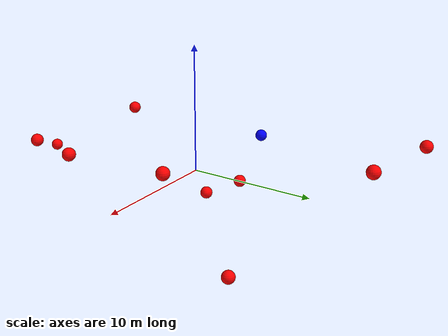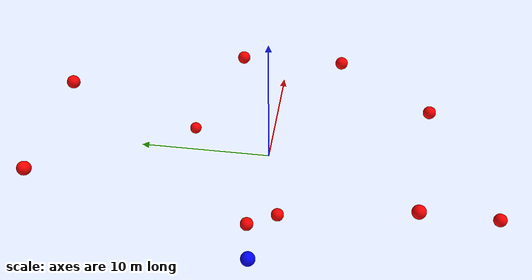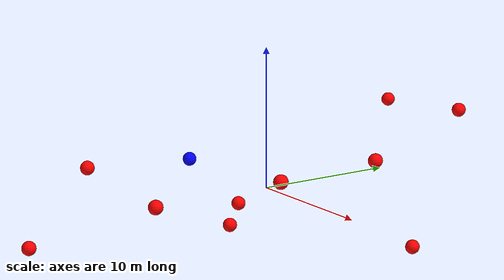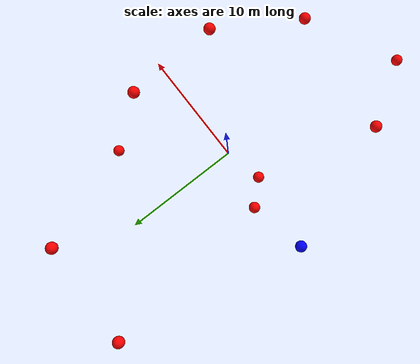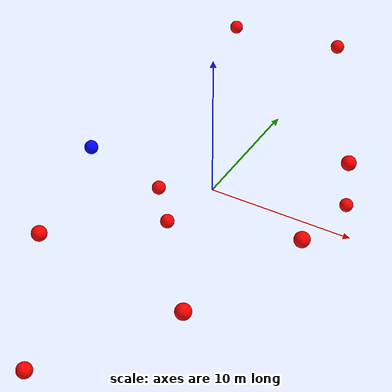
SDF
<?xml version="1.0" ?>
<sdf version="1.8">
    <world name="3d_world">
        <physics name="1ms" type="ode">
            <max_step_size>0.001</max_step_size>
            <real_time_factor>1.0</real_time_factor>
            <real_time_update_rate>1000.0</real_time_update_rate>
        </physics>
        <gravity>0 0 0</gravity>

        <plugin
            filename="gz-sim-physics-system"
            name="gz::sim::v8::systems::Physics">
        </plugin>
        <plugin
            filename="libignition-gazebo-user-commands-system.so"
            name="ignition::gazebo::systems::UserCommands">
        </plugin>
        <plugin
            filename="gz-sim-scene-broadcaster-system"
            name="gz::sim::systems::SceneBroadcaster">
        </plugin>
        <plugin
            filename="gz-sim-sensors-system"
            name="gz::sim::systems::Sensors">
            <render_engine>ogre2</render_engine>
        </plugin>

        <light type="directional" name="sun">
            <cast_shadows>true</cast_shadows>
            <pose>0 0 10 0 0 0</pose>
            <diffuse>0.8 0.8 0.8 1</diffuse>
            <specular>0.2 0.2 0.2 1</specular>
            <attenuation>
                <range>1000</range>
                <constant>0.9</constant>
                <linear>0.01</linear>
                <quadratic>0.001</quadratic>
            </attenuation>
            <direction>-0.5 0.1 -0.9</direction>
        </light>

        <!-- AGENTE -->
        <model name='agente' canonical_link='chassis'>
            <pose relative_to='world'>-10.0 0 0.0 0 0 0</pose>
            <link name='chassis'>
                <pose relative_to='__model__'>0.0 0 0.0 0 0 0</pose>
                <inertial>
                    <mass>1.14395</mass>
                    <inertia>
                        <ixx>0.095329</ixx>
                        <ixy>0</ixy>
                        <ixz>0</ixz>
                        <iyy>0.381317</iyy>
                        <iyz>0</iyz>
                        <izz>0.476646</izz>
                    </inertia>
                </inertial>
                <visual name='visual'>
                    <geometry>
                        <sphere>
                            <radius>0.5</radius>
                        </sphere>
                    </geometry>
                    <material>
                        <ambient>0.0 0.0 1.0 1</ambient>
                        <diffuse>0.0 0.0 1.0 1</diffuse>
                        <specular>0.0 0.0 1.0 1</specular>
                    </material>
                </visual>
                <collision name='collision'>
                    <geometry>
                        <sphere>
                            <radius>0.5</radius>
                        </sphere>
                    </geometry>
                </collision>
                <enable_gravity>false</enable_gravity>
            </link>

            <link name='lidar_link'>
                <pose relative_to='chassis'>0.0 0 0.1 0 0 0</pose>
                <inertial>
                    <mass>0.1</mass>
                    <inertia>
                        <ixx>0.000166667</ixx>
                        <iyy>0.000166667</iyy>
                        <izz>0.000166667</izz>
                    </inertia>
                </inertial>
                <collision name='collision'>
                    <geometry>
                        <cylinder>
                            <radius>0.05</radius>
                            <length>0.1</length>
                        </cylinder>
                    </geometry>
                </collision>
                <visual name='visual'>
                    <geometry>
                        <cylinder>
                            <radius>0.05</radius>
                            <length>0.1</length>
                        </cylinder>
                    </geometry>
                    <material>
                        <ambient>0.0 1.0 0.0 1</ambient>
                        <diffuse>0.0 1.0 0.0 1</diffuse>
                        <specular>0.0 1.0 0.0 1</specular>
                    </material>
                </visual>
                <sensor name="lidar" type="gpu_lidar">
                    <topic>scan</topic>
                    <update_rate>10</update_rate>
                    <lidar>
                        <scan>
                            <horizontal>
                                <samples>5000</samples>
                                <resolution>1</resolution>
                                <min_angle>-3.14159</min_angle>
                                <max_angle>3.14159</max_angle>
                            </horizontal>
                        </scan>
                        <range>
                            <min>0.1</min>
                            <max>10.0</max>
                            <resolution>0.01</resolution>
                        </range>
                    </lidar>
                    <visualize>true</visualize>
                    <always_on>true</always_on>
                    <update_rate>10</update_rate>
                    <pose_frame>lidar</pose_frame>
                </sensor>
                <enable_gravity>false</enable_gravity>
            </link>

            <joint name="lidar_joint" type="fixed">
                <parent>chassis</parent>
                <child>lidar_link</child>
            </joint>

            <plugin
                filename="ignition-gazebo-joint-state-publisher-system"
                name="ignition::gazebo::systems::JointStatePublisher">
            </plugin>
            <plugin
                filename="ignition-gazebo-odometry-publisher-system"
                name="ignition::gazebo::systems::OdometryPublisher">
                <dimensions>3</dimensions>
            </plugin>
            <plugin
                filename="ignition-gazebo-velocity-control-system"
                name="ignition::gazebo::systems::VelocityControl">
                <initial_linear>0.0 0 0</initial_linear>
                <initial_angular>0 0 0.0</initial_angular>
            </plugin>
            <plugin
                filename="libignition-gazebo-pose-publisher-system.so"
                name="ignition::gazebo::systems::PosePublisher">
                <topic>/agente/pose</topic>
                <frame_id>agente</frame_id>
                <update_rate>30</update_rate>
            </plugin>
        </model>

        <!-- OBSTACLE 1 -->
        <model name='obstacle_1' canonical_link='obstacle'>
            <static>false</static>
            <pose relative_to='world'>8.25 3.22 3.23 0 0 0</pose>
            <link name='obstacle'>
                <pose relative_to='__model__'>0.0 0 0.0 0 0 0</pose>
                <visual name='visual'>
                    <geometry>
                        <sphere>
                            <radius>0.50</radius>
                        </sphere>
                    </geometry>
                    <material>
                        <ambient>1.0 0.0 0.0 1</ambient>
                        <diffuse>1.0 0.0 0.0 1</diffuse>
                        <specular>1.0 0.0 0.0 1</specular>
                    </material>
                </visual>
                <collision name='collision'>
                    <geometry>
                        <sphere>
                            <radius>0.50</radius>
                        </sphere>
                    </geometry>
                </collision>
                <enable_gravity>false</enable_gravity>
            </link>

            <plugin
                filename="ignition-gazebo-velocity-control-system"
                name="ignition::gazebo::systems::VelocityControl">
                <initial_linear>-1.89 -0.47 -0.47</initial_linear>
                <initial_angular>0 0 0</initial_angular>
            </plugin>

            <plugin
                filename="ignition-gazebo-odometry-publisher-system"
                name="ignition::gazebo::systems::OdometryPublisher">
                <dimensions>3</dimensions>
            </plugin>
        </model>

        <!-- OBSTACLE 2 -->
        <model name='obstacle_2' canonical_link='obstacle'>
            <static>false</static>
            <pose relative_to='world'>-5.94 -10.93 1.75 0 0 0</pose>
            <link name='obstacle'>
                <pose relative_to='__model__'>0.0 0 0.0 0 0 0</pose>
                <visual name='visual'>
                    <geometry>
                        <sphere>
                            <radius>0.50</radius>
                        </sphere>
                    </geometry>
                    <material>
                        <ambient>1.0 0.0 0.0 1</ambient>
                        <diffuse>1.0 0.0 0.0 1</diffuse>
                        <specular>1.0 0.0 0.0 1</specular>
                    </material>
                </visual>
                <collision name='collision'>
                    <geometry>
                        <sphere>
                            <radius>0.50</radius>
                        </sphere>
                    </geometry>
                </collision>
                <enable_gravity>false</enable_gravity>
            </link>

            <plugin
                filename="ignition-gazebo-velocity-control-system"
                name="ignition::gazebo::systems::VelocityControl">
                <initial_linear>1.46 1.35 -0.22</initial_linear>
                <initial_angular>0 0 0</initial_angular>
            </plugin>

            <plugin
                filename="ignition-gazebo-odometry-publisher-system"
                name="ignition::gazebo::systems::OdometryPublisher">
                <dimensions>3</dimensions>
            </plugin>
        </model>

        <!-- OBSTACLE 3 -->
        <model name='obstacle_3' canonical_link='obstacle'>
            <static>false</static>
            <pose relative_to='world'>-2.37 -17.51 -2.06 0 0 0</pose>
            <link name='obstacle'>
                <pose relative_to='__model__'>0.0 0 0.0 0 0 0</pose>
                <visual name='visual'>
                    <geometry>
                        <sphere>
                            <radius>0.50</radius>
                        </sphere>
                    </geometry>
                    <material>
                        <ambient>1.0 0.0 0.0 1</ambient>
                        <diffuse>1.0 0.0 0.0 1</diffuse>
                        <specular>1.0 0.0 0.0 1</specular>
                    </material>
                </visual>
                <collision name='collision'>
                    <geometry>
                        <sphere>
                            <radius>0.50</radius>
                        </sphere>
                    </geometry>
                </collision>
                <enable_gravity>false</enable_gravity>
            </link>

            <plugin
                filename="ignition-gazebo-velocity-control-system"
                name="ignition::gazebo::systems::VelocityControl">
                <initial_linear>0.45 1.94 0.23</initial_linear>
                <initial_angular>0 0 0</initial_angular>
            </plugin>

            <plugin
                filename="ignition-gazebo-odometry-publisher-system"
                name="ignition::gazebo::systems::OdometryPublisher">
                <dimensions>3</dimensions>
            </plugin>
        </model>

        <!-- OBSTACLE 4 -->
        <model name='obstacle_4' canonical_link='obstacle'>
            <static>false</static>
            <pose relative_to='world'>8.75 -4.87 3.06 0 0 0</pose>
            <link name='obstacle'>
                <pose relative_to='__model__'>0.0 0 0.0 0 0 0</pose>
                <visual name='visual'>
                    <geometry>
                        <sphere>
                            <radius>0.50</radius>
                        </sphere>
                    </geometry>
                    <material>
                        <ambient>1.0 0.0 0.0 1</ambient>
                        <diffuse>1.0 0.0 0.0 1</diffuse>
                        <specular>1.0 0.0 0.0 1</specular>
                    </material>
                </visual>
                <collision name='collision'>
                    <geometry>
                        <sphere>
                            <radius>0.50</radius>
                        </sphere>
                    </geometry>
                </collision>
                <enable_gravity>false</enable_gravity>
            </link>

            <plugin
                filename="ignition-gazebo-velocity-control-system"
                name="ignition::gazebo::systems::VelocityControl">
                <initial_linear>-0.80 0.86 -0.54</initial_linear>
                <initial_angular>0 0 0</initial_angular>
            </plugin>

            <plugin
                filename="ignition-gazebo-odometry-publisher-system"
                name="ignition::gazebo::systems::OdometryPublisher">
                <dimensions>3</dimensions>
            </plugin>
        </model>

        <!-- OBSTACLE 5 -->
        <model name='obstacle_5' canonical_link='obstacle'>
            <static>false</static>
            <pose relative_to='world'>-3.01 -1.07 -3.23 0 0 0</pose>
            <link name='obstacle'>
                <pose relative_to='__model__'>0.0 0 0.0 0 0 0</pose>
                <visual name='visual'>
                    <geometry>
                        <sphere>
                            <radius>0.50</radius>
                        </sphere>
                    </geometry>
                    <material>
                        <ambient>1.0 0.0 0.0 1</ambient>
                        <diffuse>1.0 0.0 0.0 1</diffuse>
                        <specular>1.0 0.0 0.0 1</specular>
                    </material>
                </visual>
                <collision name='collision'>
                    <geometry>
                        <sphere>
                            <radius>0.50</radius>
                        </sphere>
                    </geometry>
                </collision>
                <enable_gravity>false</enable_gravity>
            </link>

            <plugin
                filename="ignition-gazebo-velocity-control-system"
                name="ignition::gazebo::systems::VelocityControl">
                <initial_linear>1.11 0.21 0.64</initial_linear>
                <initial_angular>0 0 0</initial_angular>
            </plugin>

            <plugin
                filename="ignition-gazebo-odometry-publisher-system"
                name="ignition::gazebo::systems::OdometryPublisher">
                <dimensions>3</dimensions>
            </plugin>
        </model>

        <!-- OBSTACLE 6 -->
        <model name='obstacle_6' canonical_link='obstacle'>
            <static>false</static>
            <pose relative_to='world'>6.92 7.59 -3.85 0 0 0</pose>
            <link name='obstacle'>
                <pose relative_to='__model__'>0.0 0 0.0 0 0 0</pose>
                <visual name='visual'>
                    <geometry>
                        <sphere>
                            <radius>0.50</radius>
                        </sphere>
                    </geometry>
                    <material>
                        <ambient>1.0 0.0 0.0 1</ambient>
                        <diffuse>1.0 0.0 0.0 1</diffuse>
                        <specular>1.0 0.0 0.0 1</specular>
                    </material>
                </visual>
                <collision name='collision'>
                    <geometry>
                        <sphere>
                            <radius>0.50</radius>
                        </sphere>
                    </geometry>
                </collision>
                <enable_gravity>false</enable_gravity>
            </link>

            <plugin
                filename="ignition-gazebo-velocity-control-system"
                name="ignition::gazebo::systems::VelocityControl">
                <initial_linear>-1.55 -1.13 0.57</initial_linear>
                <initial_angular>0 0 0</initial_angular>
            </plugin>

            <plugin
                filename="ignition-gazebo-odometry-publisher-system"
                name="ignition::gazebo::systems::OdometryPublisher">
                <dimensions>3</dimensions>
            </plugin>
        </model>

        <!-- OBSTACLE 7 -->
        <model name='obstacle_7' canonical_link='obstacle'>
            <static>false</static>
            <pose relative_to='world'>-4.97 0.97 -2.39 0 0 0</pose>
            <link name='obstacle'>
                <pose relative_to='__model__'>0.0 0 0.0 0 0 0</pose>
                <visual name='visual'>
                    <geometry>
                        <sphere>
                            <radius>0.50</radius>
                        </sphere>
                    </geometry>
                    <material>
                        <ambient>1.0 0.0 0.0 1</ambient>
                        <diffuse>1.0 0.0 0.0 1</diffuse>
                        <specular>1.0 0.0 0.0 1</specular>
                    </material>
                </visual>
                <collision name='collision'>
                    <geometry>
                        <sphere>
                            <radius>0.50</radius>
                        </sphere>
                    </geometry>
                </collision>
                <enable_gravity>false</enable_gravity>
            </link>

            <plugin
                filename="ignition-gazebo-velocity-control-system"
                name="ignition::gazebo::systems::VelocityControl">
                <initial_linear>1.61 -0.17 0.42</initial_linear>
                <initial_angular>0 0 0</initial_angular>
            </plugin>

            <plugin
                filename="ignition-gazebo-odometry-publisher-system"
                name="ignition::gazebo::systems::OdometryPublisher">
                <dimensions>3</dimensions>
            </plugin>
        </model>

        <!-- OBSTACLE 8 -->
        <model name='obstacle_8' canonical_link='obstacle'>
            <static>false</static>
            <pose relative_to='world'>4.99 -12.10 1.61 0 0 0</pose>
            <link name='obstacle'>
                <pose relative_to='__model__'>0.0 0 0.0 0 0 0</pose>
                <visual name='visual'>
                    <geometry>
                        <sphere>
                            <radius>0.50</radius>
                        </sphere>
                    </geometry>
                    <material>
                        <ambient>1.0 0.0 0.0 1</ambient>
                        <diffuse>1.0 0.0 0.0 1</diffuse>
                        <specular>1.0 0.0 0.0 1</specular>
                    </material>
                </visual>
                <collision name='collision'>
                    <geometry>
                        <sphere>
                            <radius>0.50</radius>
                        </sphere>
                    </geometry>
                </collision>
                <enable_gravity>false</enable_gravity>
            </link>

            <plugin
                filename="ignition-gazebo-velocity-control-system"
                name="ignition::gazebo::systems::VelocityControl">
                <initial_linear>-1.23 1.56 -0.21</initial_linear>
                <initial_angular>0 0 0</initial_angular>
            </plugin>

            <plugin
                filename="ignition-gazebo-odometry-publisher-system"
                name="ignition::gazebo::systems::OdometryPublisher">
                <dimensions>3</dimensions>
            </plugin>
        </model>

        <!-- OBSTACLE 9 -->
        <model name='obstacle_9' canonical_link='obstacle'>
            <static>false</static>
            <pose relative_to='world'>-6.82 15.94 3.12 0 0 0</pose>
            <link name='obstacle'>
                <pose relative_to='__model__'>0.0 0 0.0 0 0 0</pose>
                <visual name='visual'>
                    <geometry>
                        <sphere>
                            <radius>0.50</radius>
                        </sphere>
                    </geometry>
                    <material>
                        <ambient>1.0 0.0 0.0 1</ambient>
                        <diffuse>1.0 0.0 0.0 1</diffuse>
                        <specular>1.0 0.0 0.0 1</specular>
                    </material>
                </visual>
                <collision name='collision'>
                    <geometry>
                        <sphere>
                            <radius>0.50</radius>
                        </sphere>
                    </geometry>
                </collision>
                <enable_gravity>false</enable_gravity>
            </link>

            <plugin
                filename="ignition-gazebo-velocity-control-system"
                name="ignition::gazebo::systems::VelocityControl">
                <initial_linear>1.22 -1.56 -0.30</initial_linear>
                <initial_angular>0 0 0</initial_angular>
            </plugin>

            <plugin
                filename="ignition-gazebo-odometry-publisher-system"
                name="ignition::gazebo::systems::OdometryPublisher">
                <dimensions>3</dimensions>
            </plugin>
        </model>

        <!-- OBSTACLE 10 -->
        <model name='obstacle_10' canonical_link='obstacle'>
            <static>false</static>
            <pose relative_to='world'>2.05 15.54 4.00 0 0 0</pose>
            <link name='obstacle'>
                <pose relative_to='__model__'>0.0 0 0.0 0 0 0</pose>
                <visual name='visual'>
                    <geometry>
                        <sphere>
                            <radius>0.50</radius>
                        </sphere>
                    </geometry>
                    <material>
                        <ambient>1.0 0.0 0.0 1</ambient>
                        <diffuse>1.0 0.0 0.0 1</diffuse>
                        <specular>1.0 0.0 0.0 1</specular>
                    </material>
                </visual>
                <collision name='collision'>
                    <geometry>
                        <sphere>
                            <radius>0.50</radius>
                        </sphere>
                    </geometry>
                </collision>
                <enable_gravity>false</enable_gravity>
            </link>

            <plugin
                filename="ignition-gazebo-velocity-control-system"
                name="ignition::gazebo::systems::VelocityControl">
                <initial_linear>-0.19 -1.93 -0.50</initial_linear>
                <initial_angular>0 0 0</initial_angular>
            </plugin>

            <plugin
                filename="ignition-gazebo-odometry-publisher-system"
                name="ignition::gazebo::systems::OdometryPublisher">
                <dimensions>3</dimensions>
            </plugin>
        </model>

    </world>
</sdf>
